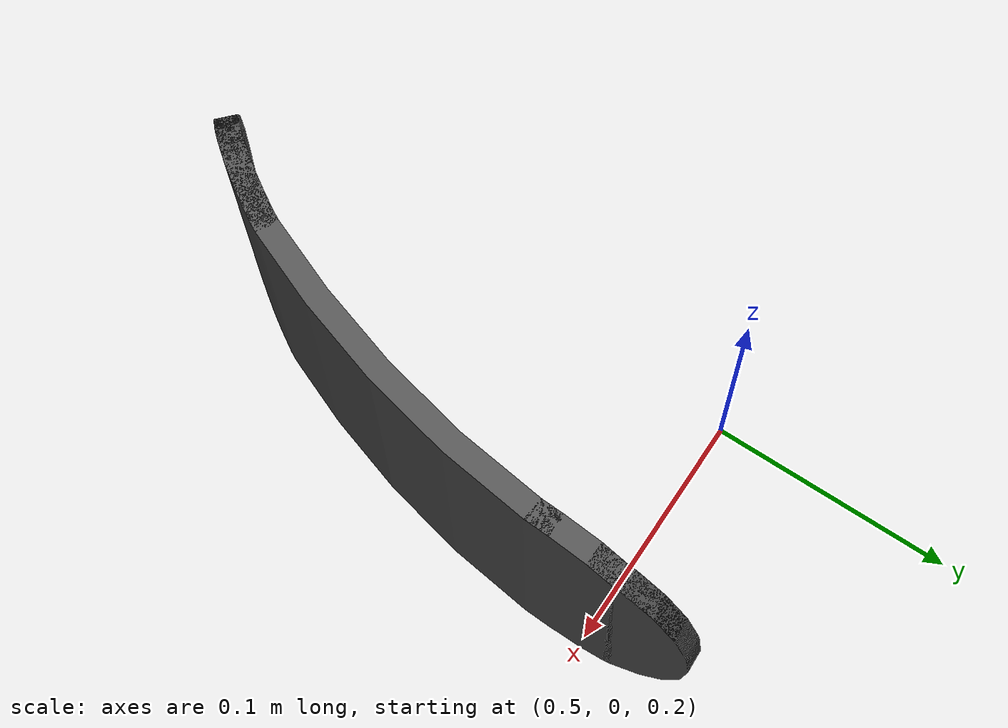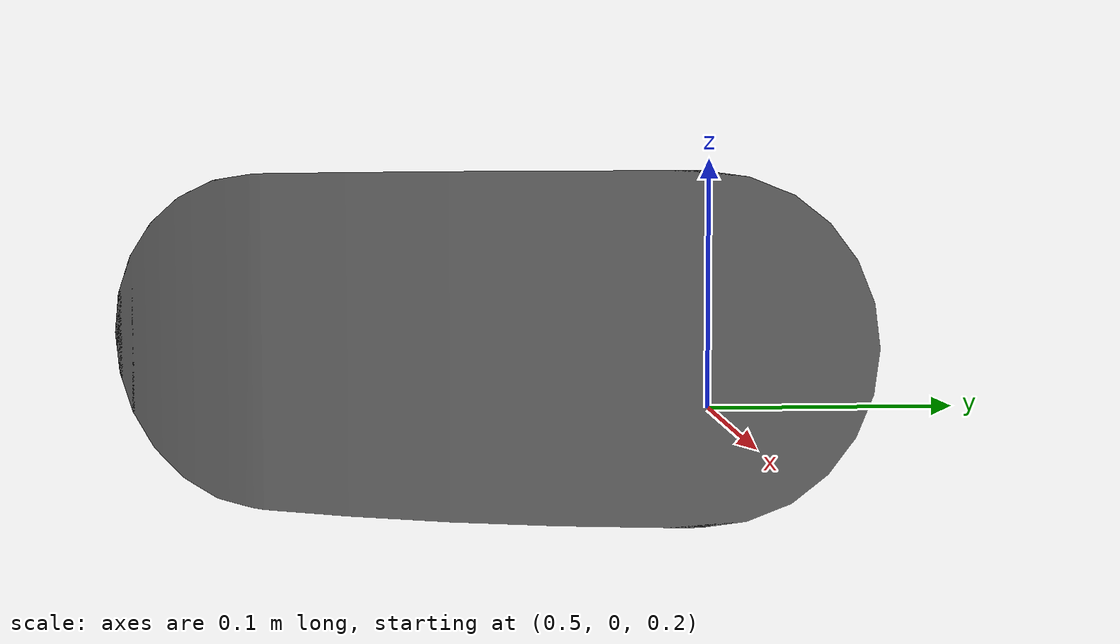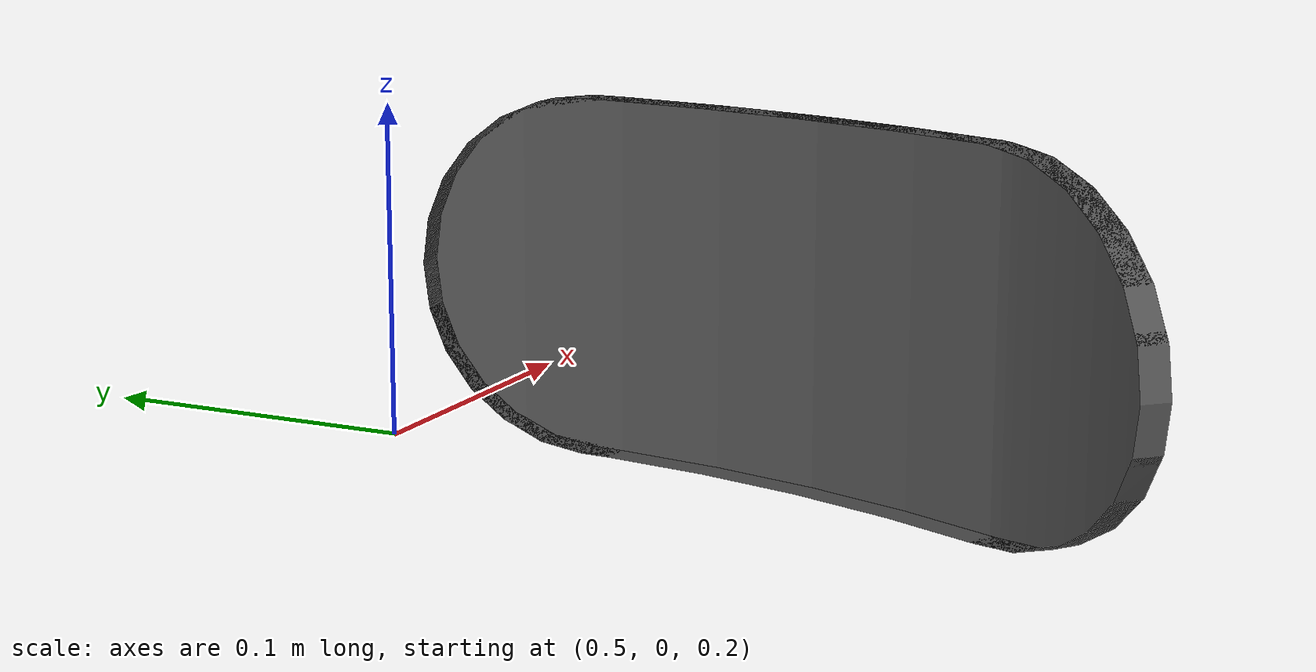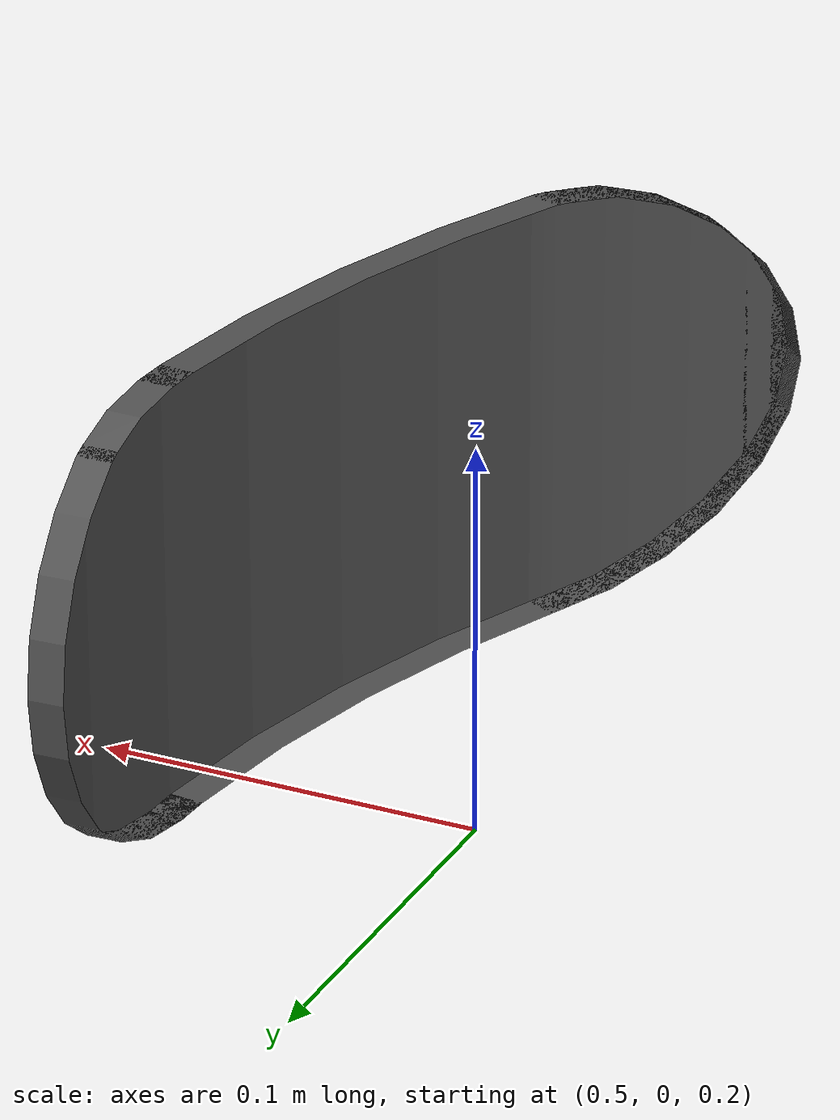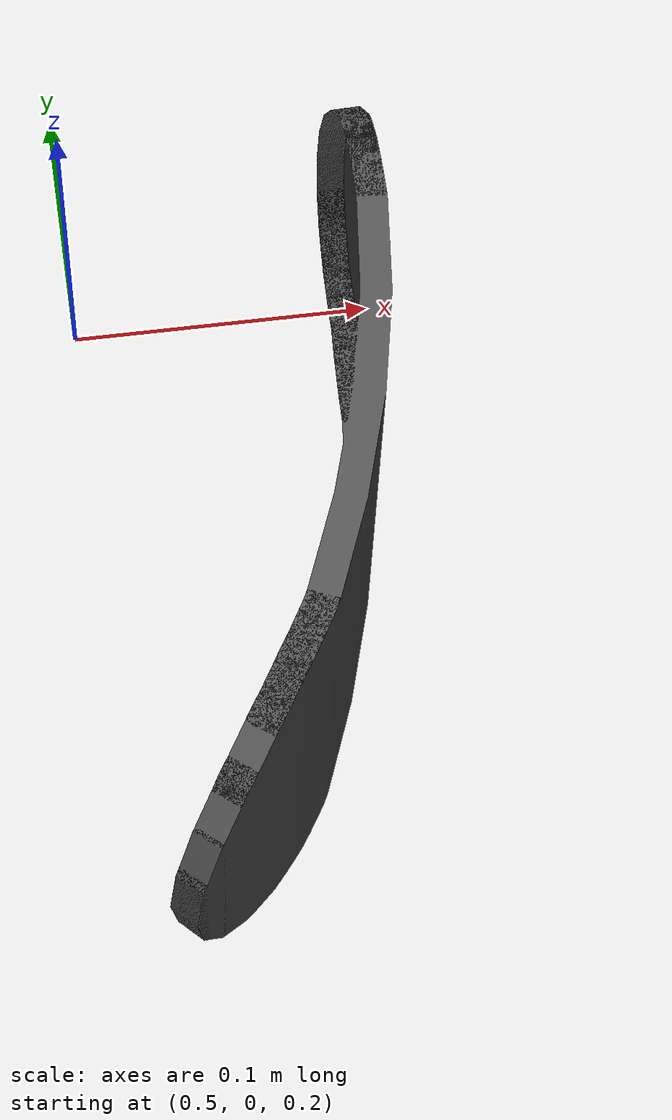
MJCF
<mujoco model="original-18">
  <default>
    <default class="visual">
      <geom group="2" type="mesh" contype="0" conaffinity="0"/>
    </default>
    <default class="collision">
      <geom group="3" type="mesh"/>
    </default>
  </default>
  <asset>
    <material name="material_0_0" specular="0.06666666666666667" shininess="0.03" rgba="0.13333333333333333 0.13333333333333333 0.13333333333333333 1"/>
    <material name="material_1_0" specular="0.06666666666666667" shininess="0.03" rgba="0.3176470588235294 0.3176470588235294 0.3176470588235294 1"/>
    <mesh file="original-18_0.obj"/>
    <mesh file="original-18_1.obj"/>
  </asset>
  <worldbody>
    <body name="original-18">
      <geom mesh="original-18_0" material="material_1_0" class="visual"/>
      <geom mesh="original-18_1" material="material_0_0" class="visual"/>
      <geom mesh="original-18_0" class="collision"/>
      <geom mesh="original-18_1" class="collision"/>
    </body>
  </worldbody>
</mujoco>
